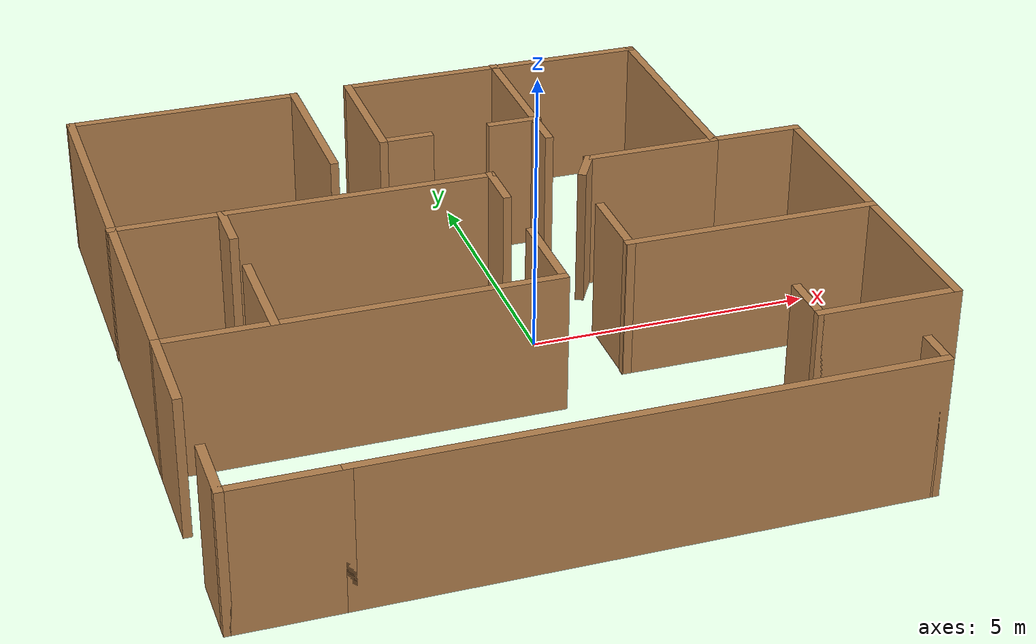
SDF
<?xml version='1.0'?>
<sdf version='1.7'>
  <model name='house_2'>
    <pose>-0.651511 -0.12624 0 0 -0 0</pose>
    <link name='Wall_11'>
      <collision name='Wall_11_Collision'>
        <geometry>
          <box>
            <size>4.26764 0.15 2.5</size>
          </box>
        </geometry>
        <pose>0 0 1.25 0 -0 0</pose>
      </collision>
      <visual name='Wall_11_Visual'>
        <pose>0 0 1.25 0 -0 0</pose>
        <geometry>
          <box>
            <size>4.26764 0.15 2.5</size>
          </box>
        </geometry>
        <material>
          <script>
            <uri>file://media/materials/scripts/gazebo.material</uri>
            <name>Gazebo/Wood</name>
          </script>
          <ambient>1 1 1 1</ambient>
        </material>
        <meta>
          <layer>0</layer>
        </meta>
      </visual>
      <pose>-4.11349 5.95495 0 0 -0 0</pose>
    </link>
    <link name='Wall_12'>
      <collision name='Wall_12_Collision'>
        <geometry>
          <box>
            <size>3 0.15 2.5</size>
          </box>
        </geometry>
        <pose>0 0 1.25 0 -0 0</pose>
      </collision>
      <visual name='Wall_12_Visual'>
        <pose>0 0 1.25 0 -0 0</pose>
        <geometry>
          <box>
            <size>3 0.15 2.5</size>
          </box>
        </geometry>
        <material>
          <script>
            <uri>file://media/materials/scripts/gazebo.material</uri>
            <name>Gazebo/Wood</name>
          </script>
          <ambient>1 1 1 1</ambient>
        </material>
        <meta>
          <layer>0</layer>
        </meta>
      </visual>
      <pose>-2.05475 4.52995 0 0 -0 -1.5708</pose>
    </link>
    <link name='Wall_15'>
      <collision name='Wall_15_Collision'>
        <geometry>
          <box>
            <size>6.75 0.15 2.5</size>
          </box>
        </geometry>
        <pose>0 0 1.25 0 -0 0</pose>
      </collision>
      <visual name='Wall_15_Visual'>
        <pose>0 0 1.25 0 -0 0</pose>
        <geometry>
          <box>
            <size>6.75 0.15 2.5</size>
          </box>
        </geometry>
        <material>
          <script>
            <uri>file://media/materials/scripts/gazebo.material</uri>
            <name>Gazebo/Wood</name>
          </script>
          <ambient>1 1 1 1</ambient>
        </material>
        <meta>
          <layer>0</layer>
        </meta>
      </visual>
      <pose>-2.88973 1.83034 0 0 -0 -0.0053</pose>
    </link>
    <link name='Wall_16'>
      <collision name='Wall_16_Collision'>
        <geometry>
          <box>
            <size>1 0.15 2.5</size>
          </box>
        </geometry>
        <pose>0 0 1.25 0 -0 0</pose>
      </collision>
      <visual name='Wall_16_Visual'>
        <pose>0 0 1.25 0 -0 0</pose>
        <geometry>
          <box>
            <size>1 0.15 2.5</size>
          </box>
        </geometry>
        <material>
          <script>
            <uri>file://media/materials/scripts/gazebo.material</uri>
            <name>Gazebo/Wood</name>
          </script>
          <ambient>1 1 1 1</ambient>
        </material>
        <meta>
          <layer>0</layer>
        </meta>
      </visual>
      <pose>0.410272 1.40534 0 0 -0 -1.5708</pose>
    </link>
    <link name='Wall_18'>
      <collision name='Wall_18_Collision'>
        <geometry>
          <box>
            <size>1 0.15 2.5</size>
          </box>
        </geometry>
        <pose>0 0 1.25 0 -0 0</pose>
      </collision>
      <visual name='Wall_18_Visual'>
        <pose>0 0 1.25 0 -0 0</pose>
        <geometry>
          <box>
            <size>1 0.15 2.5</size>
          </box>
        </geometry>
        <material>
          <script>
            <uri>file://media/materials/scripts/gazebo.material</uri>
            <name>Gazebo/Wood</name>
          </script>
          <ambient>1 1 1 1</ambient>
        </material>
        <meta>
          <layer>0</layer>
        </meta>
      </visual>
      <pose>-4.31829 1.42283 0 0 -0 -1.5708</pose>
    </link>
    <link name='Wall_2'>
      <collision name='Wall_2_Collision'>
        <geometry>
          <box>
            <size>9.5 0.15 2.5</size>
          </box>
        </geometry>
        <pose>0 0 1.25 0 -0 0</pose>
      </collision>
      <visual name='Wall_2_Visual'>
        <pose>0 0 1.25 0 -0 0</pose>
        <geometry>
          <box>
            <size>9.5 0.15 2.5</size>
          </box>
        </geometry>
        <material>
          <script>
            <uri>file://media/materials/scripts/gazebo.material</uri>
            <name>Gazebo/Wood</name>
          </script>
          <ambient>1 1 1 1</ambient>
        </material>
        <meta>
          <layer>0</layer>
        </meta>
      </visual>
      <pose>0.41601 -6.0121 0 0 -0 0</pose>
    </link>
    <link name='Wall_20'>
      <collision name='Wall_20_Collision'>
        <geometry>
          <box>
            <size>6.75 0.15 2.5</size>
          </box>
        </geometry>
        <pose>0 0 1.25 0 -0 0</pose>
      </collision>
      <visual name='Wall_20_Visual'>
        <pose>0 0 1.25 0 -0 0</pose>
        <geometry>
          <box>
            <size>6.75 0.15 2.5</size>
          </box>
        </geometry>
        <material>
          <script>
            <uri>file://media/materials/scripts/gazebo.material</uri>
            <name>Gazebo/Wood</name>
          </script>
          <ambient>1 1 1 1</ambient>
        </material>
        <meta>
          <layer>0</layer>
        </meta>
      </visual>
      <pose>-2.87224 -1.89505 0 0 -0 0</pose>
    </link>
    <link name='Wall_22'>
      <collision name='Wall_22_Collision'>
        <geometry>
          <box>
            <size>1.75 0.15 2.5</size>
          </box>
        </geometry>
        <pose>0 0 1.25 0 -0 0</pose>
      </collision>
      <visual name='Wall_22_Visual'>
        <pose>0 0 1.25 0 -0 0</pose>
        <geometry>
          <box>
            <size>1.75 0.15 2.5</size>
          </box>
        </geometry>
        <material>
          <script>
            <uri>file://media/materials/scripts/gazebo.material</uri>
            <name>Gazebo/Wood</name>
          </script>
          <ambient>1 1 1 1</ambient>
        </material>
        <meta>
          <layer>0</layer>
        </meta>
      </visual>
      <pose>0.427762 -1.09505 0 0 -0 1.5708</pose>
    </link>
    <link name='Wall_24'>
      <collision name='Wall_24_Collision'>
        <geometry>
          <box>
            <size>2 0.15 2.5</size>
          </box>
        </geometry>
        <pose>0 0 1.25 0 -0 0</pose>
      </collision>
      <visual name='Wall_24_Visual'>
        <pose>0 0 1.25 0 -0 0</pose>
        <geometry>
          <box>
            <size>2 0.15 2.5</size>
          </box>
        </geometry>
        <material>
          <script>
            <uri>file://media/materials/scripts/gazebo.material</uri>
            <name>Gazebo/Wood</name>
          </script>
          <ambient>1 1 1 1</ambient>
        </material>
        <meta>
          <layer>0</layer>
        </meta>
      </visual>
      <pose>-4.30918 -0.969318 0 0 -0 1.5708</pose>
    </link>
    <link name='Wall_26'>
      <collision name='Wall_26_Collision'>
        <geometry>
          <box>
            <size>1.99494 0.15 2.5</size>
          </box>
        </geometry>
        <pose>0 0 1.25 0 -0 0</pose>
      </collision>
      <visual name='Wall_26_Visual'>
        <pose>0 0 1.25 0 -0 0</pose>
        <geometry>
          <box>
            <size>1.99494 0.15 2.5</size>
          </box>
        </geometry>
        <material>
          <script>
            <uri>file://media/materials/scripts/gazebo.material</uri>
            <name>Gazebo/Wood</name>
          </script>
          <ambient>1 1 1 1</ambient>
        </material>
        <meta>
          <layer>0</layer>
        </meta>
      </visual>
      <pose>-5.18142 -6.0121 0 0 -0 3.14159</pose>
    </link>
    <link name='Wall_27'>
      <collision name='Wall_27_Collision'>
        <geometry>
          <box>
            <size>1.25 0.15 2.5</size>
          </box>
        </geometry>
        <pose>0 0 1.25 0 -0 0</pose>
      </collision>
      <visual name='Wall_27_Visual'>
        <pose>0 0 1.25 0 -0 0</pose>
        <geometry>
          <box>
            <size>1.25 0.15 2.5</size>
          </box>
        </geometry>
        <material>
          <script>
            <uri>file://media/materials/scripts/gazebo.material</uri>
            <name>Gazebo/Wood</name>
          </script>
          <ambient>1 1 1 1</ambient>
        </material>
        <meta>
          <layer>0</layer>
        </meta>
      </visual>
      <pose>-6.10385 -5.4621 0 0 -0 1.5708</pose>
    </link>
    <link name='Wall_29'>
      <collision name='Wall_29_Collision'>
        <geometry>
          <box>
            <size>1.75 0.15 2.5</size>
          </box>
        </geometry>
        <pose>0 0 1.25 0 -0 0</pose>
      </collision>
      <visual name='Wall_29_Visual'>
        <pose>0 0 1.25 0 -0 0</pose>
        <geometry>
          <box>
            <size>1.75 0.15 2.5</size>
          </box>
        </geometry>
        <material>
          <script>
            <uri>file://media/materials/scripts/gazebo.material</uri>
            <name>Gazebo/Wood</name>
          </script>
          <ambient>1 1 1 1</ambient>
        </material>
        <meta>
          <layer>0</layer>
        </meta>
      </visual>
      <pose>-6.17224 -2.69505 0 0 -0 -1.5708</pose>
    </link>
    <link name='Wall_34'>
      <collision name='Wall_34_Collision'>
        <geometry>
          <box>
            <size>5.75 0.15 2.5</size>
          </box>
        </geometry>
        <pose>0 0 1.25 0 -0 0</pose>
      </collision>
      <visual name='Wall_34_Visual'>
        <pose>0 0 1.25 0 -0 0</pose>
        <geometry>
          <box>
            <size>5.75 0.15 2.5</size>
          </box>
        </geometry>
        <material>
          <script>
            <uri>file://media/materials/scripts/gazebo.material</uri>
            <name>Gazebo/Wood</name>
          </script>
          <ambient>1 1 1 1</ambient>
        </material>
        <meta>
          <layer>0</layer>
        </meta>
      </visual>
      <pose>1.78733 5.99297 0 0 -0 0</pose>
    </link>
    <link name='Wall_35'>
      <collision name='Wall_35_Collision'>
        <geometry>
          <box>
            <size>4.25 0.15 2.5</size>
          </box>
        </geometry>
        <pose>0 0 1.25 0 -0 0</pose>
      </collision>
      <visual name='Wall_35_Visual'>
        <pose>0 0 1.25 0 -0 0</pose>
        <geometry>
          <box>
            <size>4.25 0.15 2.5</size>
          </box>
        </geometry>
        <material>
          <script>
            <uri>file://media/materials/scripts/gazebo.material</uri>
            <name>Gazebo/Wood</name>
          </script>
          <ambient>1 1 1 1</ambient>
        </material>
        <meta>
          <layer>0</layer>
        </meta>
      </visual>
      <pose>4.58733 3.94297 0 0 -0 -1.5708</pose>
    </link>
    <link name='Wall_37'>
      <collision name='Wall_37_Collision'>
        <geometry>
          <box>
            <size>2.5 0.15 2.5</size>
          </box>
        </geometry>
        <pose>0 0 1.25 0 -0 0</pose>
      </collision>
      <visual name='Wall_37_Visual'>
        <pose>0 0 1.25 0 -0 0</pose>
        <geometry>
          <box>
            <size>2.5 0.15 2.5</size>
          </box>
        </geometry>
        <material>
          <script>
            <uri>file://media/materials/scripts/gazebo.material</uri>
            <name>Gazebo/Wood</name>
          </script>
          <ambient>1 1 1 1</ambient>
        </material>
        <meta>
          <layer>0</layer>
        </meta>
      </visual>
      <pose>3.41233 1.89297 0 0 -0 3.14159</pose>
    </link>
    <link name='Wall_57'>
      <collision name='Wall_57_Collision'>
        <geometry>
          <box>
            <size>3.25 0.15 2.5</size>
          </box>
        </geometry>
        <pose>0 0 1.25 0 -0 0</pose>
      </collision>
      <visual name='Wall_57_Visual'>
        <pose>0 0 1.25 0 -0 0</pose>
        <geometry>
          <box>
            <size>3.25 0.15 2.5</size>
          </box>
        </geometry>
        <material>
          <script>
            <uri>file://media/materials/scripts/gazebo.material</uri>
            <name>Gazebo/Wood</name>
          </script>
          <ambient>1 1 1 1</ambient>
        </material>
        <meta>
          <layer>0</layer>
        </meta>
      </visual>
      <pose>1.83905 4.4621 0 0 -0 -1.5708</pose>
    </link>
    <link name='Wall_59'>
      <collision name='Wall_59_Collision'>
        <geometry>
          <box>
            <size>2.5 0.15 2.5</size>
          </box>
        </geometry>
        <pose>0 0 1.25 0 -0 0</pose>
      </collision>
      <visual name='Wall_59_Visual'>
        <pose>0 0 1.25 0 -0 0</pose>
        <geometry>
          <box>
            <size>2.5 0.15 2.5</size>
          </box>
        </geometry>
        <material>
          <script>
            <uri>file://media/materials/scripts/gazebo.material</uri>
            <name>Gazebo/Wood</name>
          </script>
          <ambient>1 1 1 1</ambient>
        </material>
        <meta>
          <layer>0</layer>
        </meta>
      </visual>
      <pose>-1.01267 4.81797 0 0 -0 -1.5708</pose>
    </link>
    <link name='Wall_60'>
      <collision name='Wall_60_Collision'>
        <geometry>
          <box>
            <size>1 0.15 2.5</size>
          </box>
        </geometry>
        <pose>0 0 1.25 0 -0 0</pose>
      </collision>
      <visual name='Wall_60_Visual'>
        <pose>0 0 1.25 0 -0 0</pose>
        <geometry>
          <box>
            <size>1 0.15 2.5</size>
          </box>
        </geometry>
        <material>
          <script>
            <uri>file://media/materials/scripts/gazebo.material</uri>
            <name>Gazebo/Wood</name>
          </script>
          <ambient>1 1 1 1</ambient>
        </material>
        <meta>
          <layer>0</layer>
        </meta>
      </visual>
      <pose>-0.58767 3.64297 0 0 -0 0</pose>
    </link>
    <link name='Wall_62'>
      <collision name='Wall_62_Collision'>
        <geometry>
          <box>
            <size>1 0.15 2.5</size>
          </box>
        </geometry>
        <pose>0 0 1.25 0 -0 0</pose>
      </collision>
      <visual name='Wall_62_Visual'>
        <pose>0 0 1.25 0 -0 0</pose>
        <geometry>
          <box>
            <size>1 0.15 2.5</size>
          </box>
        </geometry>
        <material>
          <script>
            <uri>file://media/materials/scripts/gazebo.material</uri>
            <name>Gazebo/Wood</name>
          </script>
          <ambient>1 1 1 1</ambient>
        </material>
        <meta>
          <layer>0</layer>
        </meta>
      </visual>
      <pose>1.45373 3.67128 0 0 -0 3.14159</pose>
    </link>
    <link name='Wall_65'>
      <collision name='Wall_65_Collision'>
        <geometry>
          <box>
            <size>1.75 0.15 2.5</size>
          </box>
        </geometry>
        <pose>0 0 1.25 0 -0 0</pose>
      </collision>
      <visual name='Wall_65_Visual'>
        <pose>0 0 1.25 0 -0 0</pose>
        <geometry>
          <box>
            <size>1.75 0.15 2.5</size>
          </box>
        </geometry>
        <material>
          <script>
            <uri>file://media/materials/scripts/gazebo.material</uri>
            <name>Gazebo/Wood</name>
          </script>
          <ambient>1 1 1 1</ambient>
        </material>
        <meta>
          <layer>0</layer>
        </meta>
      </visual>
      <pose>5.38733 1.89297 0 0 -0 0</pose>
    </link>
    <link name='Wall_66'>
      <collision name='Wall_66_Collision'>
        <geometry>
          <box>
            <size>6.25 0.15 2.5</size>
          </box>
        </geometry>
        <pose>0 0 1.25 0 -0 0</pose>
      </collision>
      <visual name='Wall_66_Visual'>
        <pose>0 0 1.25 0 -0 0</pose>
        <geometry>
          <box>
            <size>6.25 0.15 2.5</size>
          </box>
        </geometry>
        <material>
          <script>
            <uri>file://media/materials/scripts/gazebo.material</uri>
            <name>Gazebo/Wood</name>
          </script>
          <ambient>1 1 1 1</ambient>
        </material>
        <meta>
          <layer>0</layer>
        </meta>
      </visual>
      <pose>6.18733 -1.15703 0 0 -0 -1.5708</pose>
    </link>
    <link name='Wall_68'>
      <collision name='Wall_68_Collision'>
        <geometry>
          <box>
            <size>2.5 0.15 2.5</size>
          </box>
        </geometry>
        <pose>0 0 1.25 0 -0 0</pose>
      </collision>
      <visual name='Wall_68_Visual'>
        <pose>0 0 1.25 0 -0 0</pose>
        <geometry>
          <box>
            <size>2.5 0.15 2.5</size>
          </box>
        </geometry>
        <material>
          <script>
            <uri>file://media/materials/scripts/gazebo.material</uri>
            <name>Gazebo/Wood</name>
          </script>
          <ambient>1 1 1 1</ambient>
        </material>
        <meta>
          <layer>0</layer>
        </meta>
      </visual>
      <pose>5.01233 -4.20703 0 0 -0 3.14159</pose>
    </link>
    <link name='Wall_69'>
      <collision name='Wall_69_Collision'>
        <geometry>
          <box>
            <size>1 0.15 2.5</size>
          </box>
        </geometry>
        <pose>0 0 1.25 0 -0 0</pose>
      </collision>
      <visual name='Wall_69_Visual'>
        <pose>0 0 1.25 0 -0 0</pose>
        <geometry>
          <box>
            <size>1 0.15 2.5</size>
          </box>
        </geometry>
        <material>
          <script>
            <uri>file://media/materials/scripts/gazebo.material</uri>
            <name>Gazebo/Wood</name>
          </script>
          <ambient>1 1 1 1</ambient>
        </material>
        <meta>
          <layer>0</layer>
        </meta>
      </visual>
      <pose>3.83733 -3.78203 0 0 -0 1.5708</pose>
    </link>
    <link name='Wall_72'>
      <collision name='Wall_72_Collision'>
        <geometry>
          <box>
            <size>4.52645 0.15 2.5</size>
          </box>
        </geometry>
        <pose>0 0 1.25 0 -0 0</pose>
      </collision>
      <visual name='Wall_72_Visual'>
        <pose>0 0 1.25 0 -0 0</pose>
        <geometry>
          <box>
            <size>4.52645 0.15 2.5</size>
          </box>
        </geometry>
        <material>
          <script>
            <uri>file://media/materials/scripts/gazebo.material</uri>
            <name>Gazebo/Wood</name>
          </script>
          <ambient>1 1 1 1</ambient>
        </material>
        <meta>
          <layer>0</layer>
        </meta>
      </visual>
      <pose>4.00185 -1.1823 0 0 -0 3.14159</pose>
    </link>
    <link name='Wall_74'>
      <collision name='Wall_74_Collision'>
        <geometry>
          <box>
            <size>1.5 0.15 2.5</size>
          </box>
        </geometry>
        <pose>0 0 1.25 0 -0 0</pose>
      </collision>
      <visual name='Wall_74_Visual'>
        <pose>0 0 1.25 0 -0 0</pose>
        <geometry>
          <box>
            <size>1.5 0.15 2.5</size>
          </box>
        </geometry>
        <material>
          <script>
            <uri>file://media/materials/scripts/gazebo.material</uri>
            <name>Gazebo/Wood</name>
          </script>
          <ambient>1 1 1 1</ambient>
        </material>
        <meta>
          <layer>0</layer>
        </meta>
      </visual>
      <pose>1.82685 -0.507299 0 0 -0 1.5708</pose>
    </link>
    <link name='Wall_78'>
      <collision name='Wall_78_Collision'>
        <geometry>
          <box>
            <size>0.75 0.15 2.5</size>
          </box>
        </geometry>
        <pose>0 0 1.25 0 -0 0</pose>
      </collision>
      <visual name='Wall_78_Visual'>
        <pose>0 0 1.25 0 -0 0</pose>
        <geometry>
          <box>
            <size>0.75 0.15 2.5</size>
          </box>
        </geometry>
        <material>
          <script>
            <uri>file://media/materials/scripts/gazebo.material</uri>
            <name>Gazebo/Wood</name>
          </script>
          <ambient>1 1 1 1</ambient>
        </material>
        <meta>
          <layer>0</layer>
        </meta>
      </visual>
      <pose>2.08733 1.63316 0 0 -0 -2.0944</pose>
    </link>
    <link name='Wall_84'>
      <collision name='Wall_84_Collision'>
        <geometry>
          <box>
            <size>0.75 0.15 2.5</size>
          </box>
        </geometry>
        <pose>0 0 1.25 0 -0 0</pose>
      </collision>
      <visual name='Wall_84_Visual'>
        <pose>0 0 1.25 0 -0 0</pose>
        <geometry>
          <box>
            <size>0.75 0.15 2.5</size>
          </box>
        </geometry>
        <material>
          <script>
            <uri>file://media/materials/scripts/gazebo.material</uri>
            <name>Gazebo/Wood</name>
          </script>
          <ambient>1 1 1 1</ambient>
        </material>
        <meta>
          <layer>0</layer>
        </meta>
      </visual>
      <pose>5.09101 -5.7121 0 0 -0 1.5708</pose>
    </link>
    <link name='Wall_9'>
      <collision name='Wall_9_Collision'>
        <geometry>
          <box>
            <size>8 0.15 2.5</size>
          </box>
        </geometry>
        <pose>0 0 1.25 0 -0 0</pose>
      </collision>
      <visual name='Wall_9_Visual'>
        <pose>0 0 1.25 0 -0 0</pose>
        <geometry>
          <box>
            <size>8 0.15 2.5</size>
          </box>
        </geometry>
        <material>
          <script>
            <uri>file://media/materials/scripts/gazebo.material</uri>
            <name>Gazebo/Wood</name>
          </script>
          <ambient>1 1 1 1</ambient>
        </material>
        <meta>
          <layer>0</layer>
        </meta>
      </visual>
      <pose>-6.17224 2.02995 0 0 -0 1.5708</pose>
    </link>
    <static>1</static>
  </model>
</sdf>
